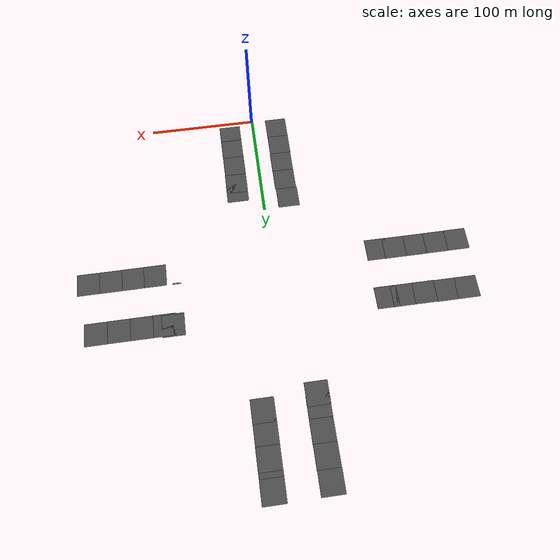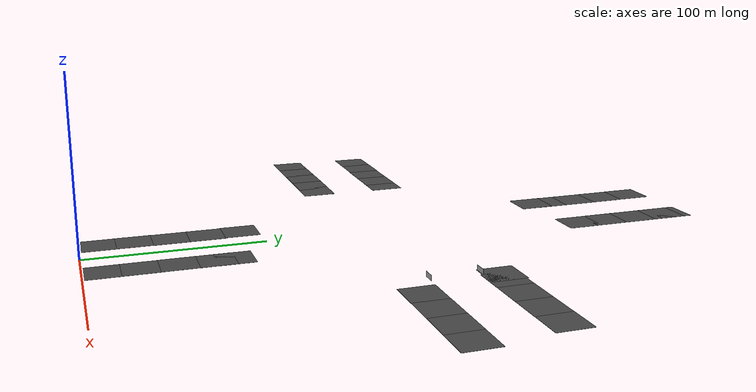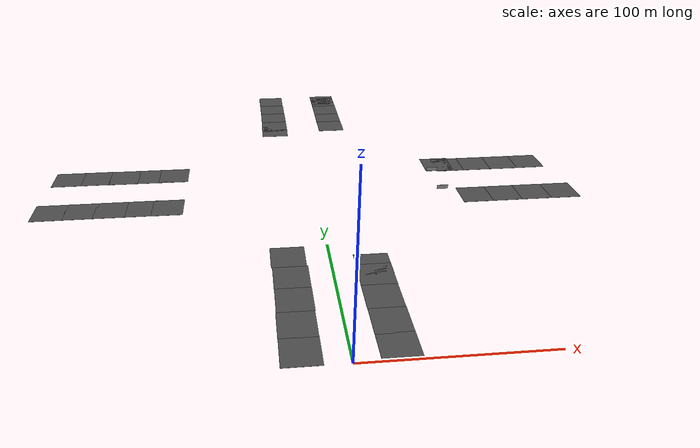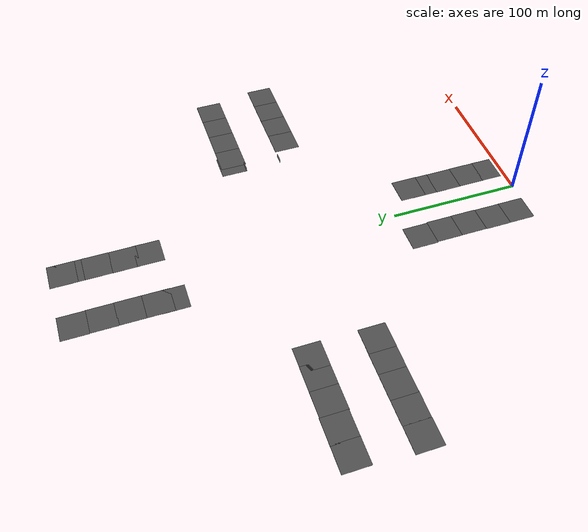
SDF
<sdf version="1.6">
 <world name="default">
  <light name="sun" type="directional">
   <pose>0 0 10 0 -0 0</pose>
   <diffuse>0.8 0.8 0.8 1</diffuse>
   <specular>0.2 0.2 0.2 1</specular>
   <attenuation>
    <range>1000</range>
    <constant>0.9</constant>
    <linear>0.01</linear>
    <quadratic>0.001</quadratic>
   </attenuation>
   <direction>-0.5 0.1 -0.9</direction>
  </light>
  <gravity>0 0 -9.8</gravity>
  <magnetic_field>6e-06 2.3e-05 -4.2e-05</magnetic_field>
  <atmosphere type="adiabatic"/>
  <physics name="default_physics" default="0" type="ode">
   <max_step_size>0.001</max_step_size>
   <real_time_factor>1</real_time_factor>
   <real_time_update_rate>1000</real_time_update_rate>
  </physics>
  <scene><ambient>0.4 0.4 0.4 1</ambient><background>0.7 0.7 0.7 1</background><shadows>1</shadows></scene>
  <audio><device>default</device></audio>
  <spherical_coordinates>
   <surface_model>EARTH_WGS84</surface_model>
   <latitude_deg>0</latitude_deg>
   <longitude_deg>0</longitude_deg>
   <elevation>0</elevation>
   <heading_deg>0</heading_deg>
  </spherical_coordinates>
  <model name="grey_wall">
   <static>1</static>
   <link name="link">
    <pose>0 0 1.4 0 -0 0</pose>
    <collision name="collision"><geometry><box><size>7.5 0.2 2.8</size></box></geometry></collision>
    <visual name="visual">
     <cast_shadows>0</cast_shadows>
     <geometry><box><size>7.5 0.2 2.8</size></box></geometry>
     <material>
      <script>
       <uri>model://grey_wall/materials/scripts</uri>
       <uri>model://grey_wall/materials/textures</uri>
       <name>vrc/grey_wall</name>
      </script>
     </material>
    </visual>
   </link>
   <pose>86.8783 191.594 0 0 -0 0</pose>
  </model>
  <model name="grey_wall_clone">
   <static>1</static>
   <link name="link">
    <pose>0 0 1.4 0 -0 0</pose>
    <collision name="collision"><geometry><box><size>7.5 0.2 2.8</size></box></geometry></collision>
    <visual name="visual">
     <cast_shadows>0</cast_shadows>
     <geometry><box><size>7.5 0.2 2.8</size></box></geometry>
     <material>
      <script>
       <uri>model://grey_wall/materials/scripts</uri>
       <uri>model://grey_wall/materials/textures</uri>
       <name>vrc/grey_wall</name>
      </script>
     </material>
    </visual>
   </link>
   <pose>86.8766 163.527 0 0 -0 0</pose>
  </model>
  <model name="asphalt_plane">
   <static>1</static>
   <link name="link">
    <collision name="collision"><geometry><box><size>20 20 0.1</size></box></geometry></collision>
    <visual name="visual">
     <cast_shadows>0</cast_shadows>
     <geometry><box><size>20 20 0.1</size></box></geometry>
     <material>
      <script>
       <uri>model://asphalt_plane/materials/scripts</uri>
       <uri>model://asphalt_plane/materials/textures</uri>
       <name>vrc/asphalt</name>
      </script>
     </material>
    </visual>
   </link>
   <pose>-23.467 9.97221 0 0 -0 0</pose>
  </model>
  <model name="asphalt_plane_clone">
   <static>1</static>
   <link name="link">
    <collision name="collision"><geometry><box><size>20 20 0.1</size></box></geometry></collision>
    <visual name="visual">
     <cast_shadows>0</cast_shadows>
     <geometry><box><size>20 20 0.1</size></box></geometry>
     <material>
      <script>
       <uri>model://asphalt_plane/materials/scripts</uri>
       <uri>model://asphalt_plane/materials/textures</uri>
       <name>vrc/asphalt</name>
      </script>
     </material>
    </visual>
   </link>
   <pose>-23.5438 29.7463 0 0 -0 0</pose>
  </model>
  <model name="asphalt_plane_clone_0">
   <static>1</static>
   <link name="link">
    <collision name="collision"><geometry><box><size>20 20 0.1</size></box></geometry></collision>
    <visual name="visual">
     <cast_shadows>0</cast_shadows>
     <geometry><box><size>20 20 0.1</size></box></geometry>
     <material>
      <script>
       <uri>model://asphalt_plane/materials/scripts</uri>
       <uri>model://asphalt_plane/materials/textures</uri>
       <name>vrc/asphalt</name>
      </script>
     </material>
    </visual>
   </link>
   <pose>-23.2643 49.6695 0 0 -0 0</pose>
  </model>
  <model name="asphalt_plane_clone_1">
   <static>1</static>
   <link name="link">
    <collision name="collision"><geometry><box><size>20 20 0.1</size></box></geometry></collision>
    <visual name="visual">
     <cast_shadows>0</cast_shadows>
     <geometry><box><size>20 20 0.1</size></box></geometry>
     <material>
      <script>
       <uri>model://asphalt_plane/materials/scripts</uri>
       <uri>model://asphalt_plane/materials/textures</uri>
       <name>vrc/asphalt</name>
      </script>
     </material>
    </visual>
   </link>
   <pose>-23.3735 69.5605 0 0 -0 0</pose>
  </model>
  <model name="asphalt_plane_clone_2">
   <static>1</static>
   <link name="link">
    <collision name="collision"><geometry><box><size>20 20 0.1</size></box></geometry></collision>
    <visual name="visual">
     <cast_shadows>0</cast_shadows>
     <geometry><box><size>20 20 0.1</size></box></geometry>
     <material>
      <script>
       <uri>model://asphalt_plane/materials/scripts</uri>
       <uri>model://asphalt_plane/materials/textures</uri>
       <name>vrc/asphalt</name>
      </script>
     </material>
    </visual>
   </link>
   <pose>-24.0028 89.4296 0 0 -0 0</pose>
  </model>
  <model name="asphalt_plane_clone_3">
   <static>1</static>
   <link name="link">
    <collision name="collision"><geometry><box><size>20 20 0.1</size></box></geometry></collision>
    <visual name="visual">
     <cast_shadows>0</cast_shadows>
     <geometry><box><size>20 20 0.1</size></box></geometry>
     <material>
      <script>
       <uri>model://asphalt_plane/materials/scripts</uri>
       <uri>model://asphalt_plane/materials/textures</uri>
       <name>vrc/asphalt</name>
      </script>
     </material>
    </visual>
   </link>
   <pose>23.2258 9.30053 0 0 -0 0</pose>
  </model>
  <model name="asphalt_plane_clone_4">
   <static>1</static>
   <link name="link">
    <collision name="collision"><geometry><box><size>20 20 0.1</size></box></geometry></collision>
    <visual name="visual">
     <cast_shadows>0</cast_shadows>
     <geometry><box><size>20 20 0.1</size></box></geometry>
     <material>
      <script>
       <uri>model://asphalt_plane/materials/scripts</uri>
       <uri>model://asphalt_plane/materials/textures</uri>
       <name>vrc/asphalt</name>
      </script>
     </material>
    </visual>
   </link>
   <pose>23.1902 28.6542 0 0 -0 0</pose>
  </model>
  <model name="asphalt_plane_clone_5">
   <static>1</static>
   <link name="link">
    <collision name="collision"><geometry><box><size>20 20 0.1</size></box></geometry></collision>
    <visual name="visual">
     <cast_shadows>0</cast_shadows>
     <geometry><box><size>20 20 0.1</size></box></geometry>
     <material>
      <script>
       <uri>model://asphalt_plane/materials/scripts</uri>
       <uri>model://asphalt_plane/materials/textures</uri>
       <name>vrc/asphalt</name>
      </script>
     </material>
    </visual>
   </link>
   <pose>23.0604 48.5906 0 0 -0 0</pose>
  </model>
  <model name="asphalt_plane_clone_6">
   <static>1</static>
   <link name="link">
    <collision name="collision"><geometry><box><size>20 20 0.1</size></box></geometry></collision>
    <visual name="visual">
     <cast_shadows>0</cast_shadows>
     <geometry><box><size>20 20 0.1</size></box></geometry>
     <material>
      <script>
       <uri>model://asphalt_plane/materials/scripts</uri>
       <uri>model://asphalt_plane/materials/textures</uri>
       <name>vrc/asphalt</name>
      </script>
     </material>
    </visual>
   </link>
   <pose>23.1449 68.1965 0 0 -0 0</pose>
  </model>
  <model name="asphalt_plane_clone_7">
   <static>1</static>
   <link name="link">
    <collision name="collision"><geometry><box><size>20 20 0.1</size></box></geometry></collision>
    <visual name="visual">
     <cast_shadows>0</cast_shadows>
     <geometry><box><size>20 20 0.1</size></box></geometry>
     <material>
      <script>
       <uri>model://asphalt_plane/materials/scripts</uri>
       <uri>model://asphalt_plane/materials/textures</uri>
       <name>vrc/asphalt</name>
      </script>
     </material>
    </visual>
   </link>
   <pose>23.3098 78.1008 0 0 -0 0</pose>
  </model>
  <model name="asphalt_plane_clone_8">
   <static>1</static>
   <link name="link">
    <collision name="collision"><geometry><box><size>20 20 0.1</size></box></geometry></collision>
    <visual name="visual">
     <cast_shadows>0</cast_shadows>
     <geometry><box><size>20 20 0.1</size></box></geometry>
     <material>
      <script>
       <uri>model://asphalt_plane/materials/scripts</uri>
       <uri>model://asphalt_plane/materials/textures</uri>
       <name>vrc/asphalt</name>
      </script>
     </material>
    </visual>
   </link>
   <pose>106.18 153.358 0 0 -0 0</pose>
  </model>
  <model name="asphalt_plane_clone_9">
   <static>1</static>
   <link name="link">
    <collision name="collision"><geometry><box><size>20 20 0.1</size></box></geometry></collision>
    <visual name="visual">
     <cast_shadows>0</cast_shadows>
     <geometry><box><size>20 20 0.1</size></box></geometry>
     <material>
      <script>
       <uri>model://asphalt_plane/materials/scripts</uri>
       <uri>model://asphalt_plane/materials/textures</uri>
       <name>vrc/asphalt</name>
      </script>
     </material>
    </visual>
   </link>
   <pose>125.915 153.434 0 0 -0 0</pose>
  </model>
  <model name="asphalt_plane_clone_10">
   <static>1</static>
   <link name="link">
    <collision name="collision"><geometry><box><size>20 20 0.1</size></box></geometry></collision>
    <visual name="visual">
     <cast_shadows>0</cast_shadows>
     <geometry><box><size>20 20 0.1</size></box></geometry>
     <material>
      <script>
       <uri>model://asphalt_plane/materials/scripts</uri>
       <uri>model://asphalt_plane/materials/textures</uri>
       <name>vrc/asphalt</name>
      </script>
     </material>
    </visual>
   </link>
   <pose>145.913 153.482 0 0 -0 0</pose>
  </model>
  <model name="asphalt_plane_clone_11">
   <static>1</static>
   <link name="link">
    <collision name="collision"><geometry><box><size>20 20 0.1</size></box></geometry></collision>
    <visual name="visual">
     <cast_shadows>0</cast_shadows>
     <geometry><box><size>20 20 0.1</size></box></geometry>
     <material>
      <script>
       <uri>model://asphalt_plane/materials/scripts</uri>
       <uri>model://asphalt_plane/materials/textures</uri>
       <name>vrc/asphalt</name>
      </script>
     </material>
    </visual>
   </link>
   <pose>165.854 153.455 0 0 -0 0</pose>
  </model>
  <model name="asphalt_plane_clone_12">
   <static>1</static>
   <link name="link">
    <collision name="collision"><geometry><box><size>20 20 0.1</size></box></geometry></collision>
    <visual name="visual">
     <cast_shadows>0</cast_shadows>
     <geometry><box><size>20 20 0.1</size></box></geometry>
     <material>
      <script>
       <uri>model://asphalt_plane/materials/scripts</uri>
       <uri>model://asphalt_plane/materials/textures</uri>
       <name>vrc/asphalt</name>
      </script>
     </material>
    </visual>
   </link>
   <pose>160.013 200.249 0 0 -0 0</pose>
  </model>
  <model name="asphalt_plane_clone_13">
   <static>1</static>
   <link name="link">
    <collision name="collision"><geometry><box><size>20 20 0.1</size></box></geometry></collision>
    <visual name="visual">
     <cast_shadows>0</cast_shadows>
     <geometry><box><size>20 20 0.1</size></box></geometry>
     <material>
      <script>
       <uri>model://asphalt_plane/materials/scripts</uri>
       <uri>model://asphalt_plane/materials/textures</uri>
       <name>vrc/asphalt</name>
      </script>
     </material>
    </visual>
   </link>
   <pose>140.085 200.159 0 0 -0 0</pose>
  </model>
  <model name="asphalt_plane_clone_14">
   <static>1</static>
   <link name="link">
    <collision name="collision"><geometry><box><size>20 20 0.1</size></box></geometry></collision>
    <visual name="visual">
     <cast_shadows>0</cast_shadows>
     <geometry><box><size>20 20 0.1</size></box></geometry>
     <material>
      <script>
       <uri>model://asphalt_plane/materials/scripts</uri>
       <uri>model://asphalt_plane/materials/textures</uri>
       <name>vrc/asphalt</name>
      </script>
     </material>
    </visual>
   </link>
   <pose>120.183 200.132 0 0 -0 0</pose>
  </model>
  <model name="asphalt_plane_clone_15">
   <static>1</static>
   <link name="link">
    <collision name="collision"><geometry><box><size>20 20 0.1</size></box></geometry></collision>
    <visual name="visual">
     <cast_shadows>0</cast_shadows>
     <geometry><box><size>20 20 0.1</size></box></geometry>
     <material>
      <script>
       <uri>model://asphalt_plane/materials/scripts</uri>
       <uri>model://asphalt_plane/materials/textures</uri>
       <name>vrc/asphalt</name>
      </script>
     </material>
    </visual>
   </link>
   <pose>100.292 200.092 0 0 -0 0</pose>
  </model>
  <model name="asphalt_plane_clone_16">
   <static>1</static>
   <link name="link">
    <collision name="collision"><geometry><box><size>20 20 0.1</size></box></geometry></collision>
    <visual name="visual">
     <cast_shadows>0</cast_shadows>
     <geometry><box><size>20 20 0.1</size></box></geometry>
     <material>
      <script>
       <uri>model://asphalt_plane/materials/scripts</uri>
       <uri>model://asphalt_plane/materials/textures</uri>
       <name>vrc/asphalt</name>
      </script>
     </material>
    </visual>
   </link>
   <pose>92.6777 201.107 0 0 -0 0</pose>
  </model>
  <model name="asphalt_plane_clone_17">
   <static>1</static>
   <link name="link">
    <collision name="collision"><geometry><box><size>20 20 0.1</size></box></geometry></collision>
    <visual name="visual">
     <cast_shadows>0</cast_shadows>
     <geometry><box><size>20 20 0.1</size></box></geometry>
     <material>
      <script>
       <uri>model://asphalt_plane/materials/scripts</uri>
       <uri>model://asphalt_plane/materials/textures</uri>
       <name>vrc/asphalt</name>
      </script>
     </material>
    </visual>
   </link>
   <pose>23.9685 283.082 0 0 -0 0</pose>
  </model>
  <model name="asphalt_plane_clone_18">
   <static>1</static>
   <link name="link">
    <collision name="collision"><geometry><box><size>20 20 0.1</size></box></geometry></collision>
    <visual name="visual">
     <cast_shadows>0</cast_shadows>
     <geometry><box><size>20 20 0.1</size></box></geometry>
     <material>
      <script>
       <uri>model://asphalt_plane/materials/scripts</uri>
       <uri>model://asphalt_plane/materials/textures</uri>
       <name>vrc/asphalt</name>
      </script>
     </material>
    </visual>
   </link>
   <pose>23.8716 300.828 0 0 -0 0</pose>
  </model>
  <model name="asphalt_plane_clone_19">
   <static>1</static>
   <link name="link">
    <collision name="collision"><geometry><box><size>20 20 0.1</size></box></geometry></collision>
    <visual name="visual">
     <cast_shadows>0</cast_shadows>
     <geometry><box><size>20 20 0.1</size></box></geometry>
     <material>
      <script>
       <uri>model://asphalt_plane/materials/scripts</uri>
       <uri>model://asphalt_plane/materials/textures</uri>
       <name>vrc/asphalt</name>
      </script>
     </material>
    </visual>
   </link>
   <pose>23.921 320.585 0 0 -0 0</pose>
  </model>
  <model name="asphalt_plane_clone_20">
   <static>1</static>
   <link name="link">
    <collision name="collision"><geometry><box><size>20 20 0.1</size></box></geometry></collision>
    <visual name="visual">
     <cast_shadows>0</cast_shadows>
     <geometry><box><size>20 20 0.1</size></box></geometry>
     <material>
      <script>
       <uri>model://asphalt_plane/materials/scripts</uri>
       <uri>model://asphalt_plane/materials/textures</uri>
       <name>vrc/asphalt</name>
      </script>
     </material>
    </visual>
   </link>
   <pose>23.8761 340.506 0 0 -0 0</pose>
  </model>
  <model name="asphalt_plane_clone_21">
   <static>1</static>
   <link name="link">
    <collision name="collision"><geometry><box><size>20 20 0.1</size></box></geometry></collision>
    <visual name="visual">
     <cast_shadows>0</cast_shadows>
     <geometry><box><size>20 20 0.1</size></box></geometry>
     <material>
      <script>
       <uri>model://asphalt_plane/materials/scripts</uri>
       <uri>model://asphalt_plane/materials/textures</uri>
       <name>vrc/asphalt</name>
      </script>
     </material>
    </visual>
   </link>
   <pose>23.9153 345.322 0 0 -0 0</pose>
  </model>
  <model name="asphalt_plane_clone_22">
   <static>1</static>
   <link name="link">
    <collision name="collision"><geometry><box><size>20 20 0.1</size></box></geometry></collision>
    <visual name="visual">
     <cast_shadows>0</cast_shadows>
     <geometry><box><size>20 20 0.1</size></box></geometry>
     <material>
      <script>
       <uri>model://asphalt_plane/materials/scripts</uri>
       <uri>model://asphalt_plane/materials/textures</uri>
       <name>vrc/asphalt</name>
      </script>
     </material>
    </visual>
   </link>
   <pose>-22.7108 344.788 0 0 -0 0</pose>
  </model>
  <model name="asphalt_plane_clone_23">
   <static>1</static>
   <link name="link">
    <collision name="collision"><geometry><box><size>20 20 0.1</size></box></geometry></collision>
    <visual name="visual">
     <cast_shadows>0</cast_shadows>
     <geometry><box><size>20 20 0.1</size></box></geometry>
     <material>
      <script>
       <uri>model://asphalt_plane/materials/scripts</uri>
       <uri>model://asphalt_plane/materials/textures</uri>
       <name>vrc/asphalt</name>
      </script>
     </material>
    </visual>
   </link>
   <pose>-22.481 324.811 0 0 -0 0</pose>
  </model>
  <model name="asphalt_plane_clone_24">
   <static>1</static>
   <link name="link">
    <collision name="collision"><geometry><box><size>20 20 0.1</size></box></geometry></collision>
    <visual name="visual">
     <cast_shadows>0</cast_shadows>
     <geometry><box><size>20 20 0.1</size></box></geometry>
     <material>
      <script>
       <uri>model://asphalt_plane/materials/scripts</uri>
       <uri>model://asphalt_plane/materials/textures</uri>
       <name>vrc/asphalt</name>
      </script>
     </material>
    </visual>
   </link>
   <pose>-22.3408 305.303 0 0 -0 0</pose>
  </model>
  <model name="asphalt_plane_clone_25">
   <static>1</static>
   <link name="link">
    <collision name="collision"><geometry><box><size>20 20 0.1</size></box></geometry></collision>
    <visual name="visual">
     <cast_shadows>0</cast_shadows>
     <geometry><box><size>20 20 0.1</size></box></geometry>
     <material>
      <script>
       <uri>model://asphalt_plane/materials/scripts</uri>
       <uri>model://asphalt_plane/materials/textures</uri>
       <name>vrc/asphalt</name>
      </script>
     </material>
    </visual>
   </link>
   <pose>-22.3401 285.88 0 0 -0 0</pose>
  </model>
  <model name="asphalt_plane_clone_26">
   <static>1</static>
   <link name="link">
    <collision name="collision"><geometry><box><size>20 20 0.1</size></box></geometry></collision>
    <visual name="visual">
     <cast_shadows>0</cast_shadows>
     <geometry><box><size>20 20 0.1</size></box></geometry>
     <material>
      <script>
       <uri>model://asphalt_plane/materials/scripts</uri>
       <uri>model://asphalt_plane/materials/textures</uri>
       <name>vrc/asphalt</name>
      </script>
     </material>
    </visual>
   </link>
   <pose>-22.5577 275.277 0 0 -0 0</pose>
  </model>
  <model name="asphalt_plane_clone_27">
   <static>1</static>
   <link name="link">
    <collision name="collision"><geometry><box><size>20 20 0.1</size></box></geometry></collision>
    <visual name="visual">
     <cast_shadows>0</cast_shadows>
     <geometry><box><size>20 20 0.1</size></box></geometry>
     <material>
      <script>
       <uri>model://asphalt_plane/materials/scripts</uri>
       <uri>model://asphalt_plane/materials/textures</uri>
       <name>vrc/asphalt</name>
      </script>
     </material>
    </visual>
   </link>
   <pose>-97.5358 154.305 0 0 -0 0</pose>
  </model>
  <model name="asphalt_plane_clone_28">
   <static>1</static>
   <link name="link">
    <collision name="collision"><geometry><box><size>20 20 0.1</size></box></geometry></collision>
    <visual name="visual">
     <cast_shadows>0</cast_shadows>
     <geometry><box><size>20 20 0.1</size></box></geometry>
     <material>
      <script>
       <uri>model://asphalt_plane/materials/scripts</uri>
       <uri>model://asphalt_plane/materials/textures</uri>
       <name>vrc/asphalt</name>
      </script>
     </material>
    </visual>
   </link>
   <pose>-113.99 154.452 0 0 -0 0</pose>
  </model>
  <model name="asphalt_plane_clone_29">
   <static>1</static>
   <link name="link">
    <collision name="collision"><geometry><box><size>20 20 0.1</size></box></geometry></collision>
    <visual name="visual">
     <cast_shadows>0</cast_shadows>
     <geometry><box><size>20 20 0.1</size></box></geometry>
     <material>
      <script>
       <uri>model://asphalt_plane/materials/scripts</uri>
       <uri>model://asphalt_plane/materials/textures</uri>
       <name>vrc/asphalt</name>
      </script>
     </material>
    </visual>
   </link>
   <pose>-133.887 154.444 0 0 -0 0</pose>
  </model>
  <model name="asphalt_plane_clone_30">
   <static>1</static>
   <link name="link">
    <collision name="collision"><geometry><box><size>20 20 0.1</size></box></geometry></collision>
    <visual name="visual">
     <cast_shadows>0</cast_shadows>
     <geometry><box><size>20 20 0.1</size></box></geometry>
     <material>
      <script>
       <uri>model://asphalt_plane/materials/scripts</uri>
       <uri>model://asphalt_plane/materials/textures</uri>
       <name>vrc/asphalt</name>
      </script>
     </material>
    </visual>
   </link>
   <pose>-152.632 154.392 0 0 -0 0</pose>
  </model>
  <model name="asphalt_plane_clone_31">
   <static>1</static>
   <link name="link">
    <collision name="collision"><geometry><box><size>20 20 0.1</size></box></geometry></collision>
    <visual name="visual">
     <cast_shadows>0</cast_shadows>
     <geometry><box><size>20 20 0.1</size></box></geometry>
     <material>
      <script>
       <uri>model://asphalt_plane/materials/scripts</uri>
       <uri>model://asphalt_plane/materials/textures</uri>
       <name>vrc/asphalt</name>
      </script>
     </material>
    </visual>
   </link>
   <pose>-172.761 154.281 0 0 -0 0</pose>
  </model>
  <model name="asphalt_plane_clone_32">
   <static>1</static>
   <link name="link">
    <collision name="collision"><geometry><box><size>20 20 0.1</size></box></geometry></collision>
    <visual name="visual">
     <cast_shadows>0</cast_shadows>
     <geometry><box><size>20 20 0.1</size></box></geometry>
     <material>
      <script>
       <uri>model://asphalt_plane/materials/scripts</uri>
       <uri>model://asphalt_plane/materials/textures</uri>
       <name>vrc/asphalt</name>
      </script>
     </material>
    </visual>
   </link>
   <pose>-170.441 201.028 0 0 -0 0</pose>
  </model>
  <model name="asphalt_plane_clone_33">
   <static>1</static>
   <link name="link">
    <collision name="collision"><geometry><box><size>20 20 0.1</size></box></geometry></collision>
    <visual name="visual">
     <cast_shadows>0</cast_shadows>
     <geometry><box><size>20 20 0.1</size></box></geometry>
     <material>
      <script>
       <uri>model://asphalt_plane/materials/scripts</uri>
       <uri>model://asphalt_plane/materials/textures</uri>
       <name>vrc/asphalt</name>
      </script>
     </material>
    </visual>
   </link>
   <pose>-151.073 201.054 0 0 -0 0</pose>
  </model>
  <model name="asphalt_plane_clone_34">
   <static>1</static>
   <link name="link">
    <collision name="collision"><geometry><box><size>20 20 0.1</size></box></geometry></collision>
    <visual name="visual">
     <cast_shadows>0</cast_shadows>
     <geometry><box><size>20 20 0.1</size></box></geometry>
     <material>
      <script>
       <uri>model://asphalt_plane/materials/scripts</uri>
       <uri>model://asphalt_plane/materials/textures</uri>
       <name>vrc/asphalt</name>
      </script>
     </material>
    </visual>
   </link>
   <pose>-131.777 200.755 0 0 -0 0</pose>
  </model>
  <model name="asphalt_plane_clone_35">
   <static>1</static>
   <link name="link">
    <collision name="collision"><geometry><box><size>20 20 0.1</size></box></geometry></collision>
    <visual name="visual">
     <cast_shadows>0</cast_shadows>
     <geometry><box><size>20 20 0.1</size></box></geometry>
     <material>
      <script>
       <uri>model://asphalt_plane/materials/scripts</uri>
       <uri>model://asphalt_plane/materials/textures</uri>
       <name>vrc/asphalt</name>
      </script>
     </material>
    </visual>
   </link>
   <pose>-112.122 200.75 0 0 -0 0</pose>
  </model>
  <model name="asphalt_plane_clone_36">
   <static>1</static>
   <link name="link">
    <collision name="collision"><geometry><box><size>20 20 0.1</size></box></geometry></collision>
    <visual name="visual">
     <cast_shadows>0</cast_shadows>
     <geometry><box><size>20 20 0.1</size></box></geometry>
     <material>
      <script>
       <uri>model://asphalt_plane/materials/scripts</uri>
       <uri>model://asphalt_plane/materials/textures</uri>
       <name>vrc/asphalt</name>
      </script>
     </material>
    </visual>
   </link>
   <pose>-97.3483 200.679 0 0 -0 0</pose>
  </model>
 </world>
</sdf>
